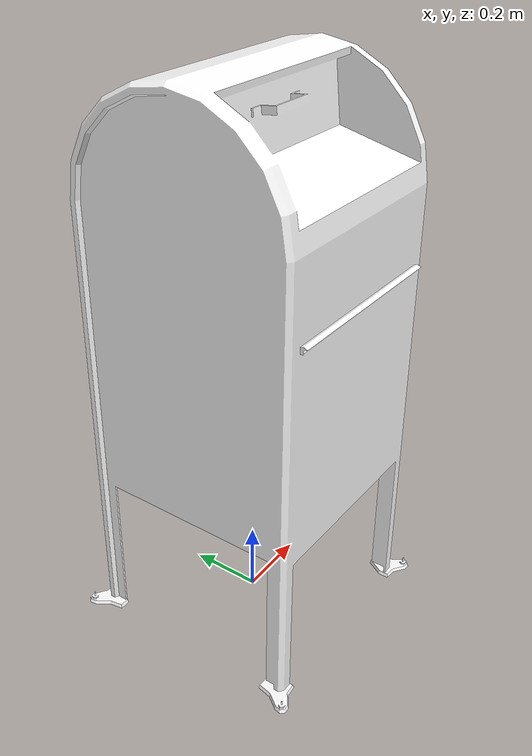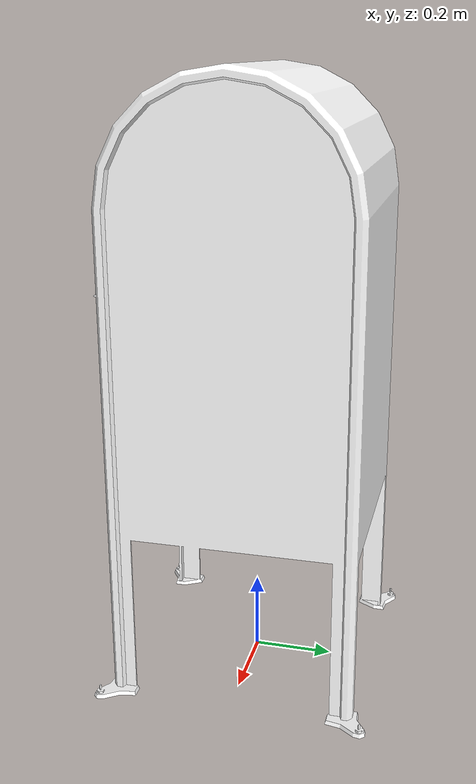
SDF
<?xml version="1.0" ?>
<sdf version="1.6">
  <model name="postbox">
    <static>true</static>
    <link name="link">
      <collision name="collision">
        <pose>0 0 0.75 0 0 0</pose>
        <geometry>
          <box>
            <size>0.7 0.5 1.5</size>
          </box>
        </geometry>
      </collision>
      <visual name="visual">
        <geometry>
          <mesh>
            <uri>model://postbox/meshes/postbox.dae</uri>
          </mesh>
        </geometry>
        <material>
          <ambient>1 1 1 1</ambient>
          <diffuse>1 1 1 1</diffuse>
          <pbr>
            <metal>
              <albedo_map>model://postbox/materials/textures/postbox_diffuse.jpg</albedo_map>
              <roughness>0.72</roughness>
              <metalness>0.0</metalness>
            </metal>
          </pbr>
        </material>
      </visual>
    </link>
  </model>
</sdf>
